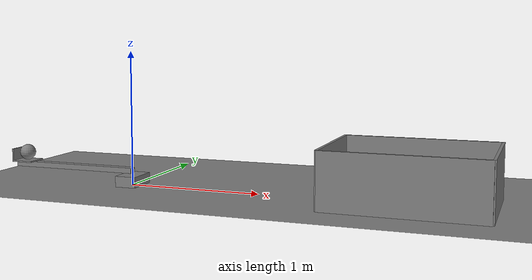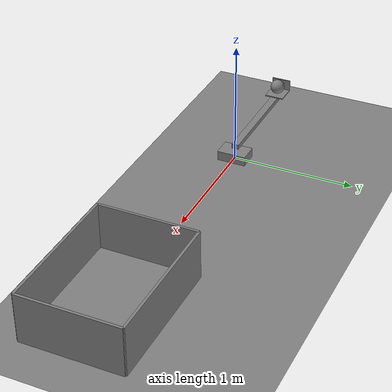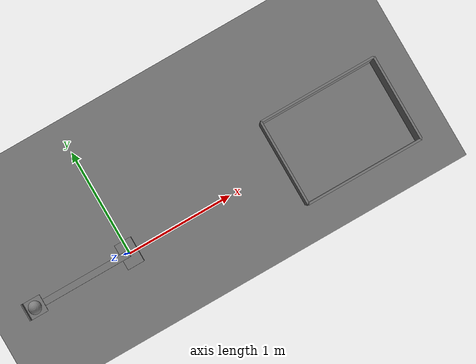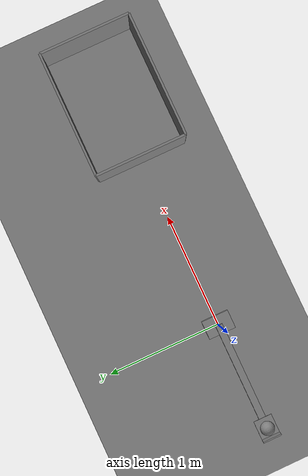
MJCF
<mujoco model="catapult_fixture_corrected">
  <compiler angle="degree"/>
  <option timestep="0.002"/>
  <worldbody>
    <geom name="floor" type="plane" size="8 8 0.1"/>
    <geom name="catapult_base" type="box" pos="0 0 0.04" size="0.08 0.12 0.04"/>
    <body name="catapult_arm" pos="0 0 0.11">
      <joint name="catapult_hinge" type="hinge" axis="0 1 0" limited="true" range="0 55" stiffness="2.65" springref="150" damping="0.05" armature="0.01" solreflimit="0.005 1"/>
      <geom name="catapult_beam" type="box" pos="-0.500 0 0" size="0.500 0.03 0.02" mass="0.3"/>
      <geom name="catapult_cup_floor" type="box" pos="-0.920 0 0.025" size="0.08 0.08 0.005" mass="0.02"/>
      <geom name="catapult_cup_back" type="box" pos="-1.005 0 0.07" size="0.005 0.08 0.05" mass="0.01"/>
    </body>
    <body name="ball" pos="-0.920 0 0.200">
      <freejoint/>
      <geom name="ball" type="sphere" size="0.06" mass="0.15" condim="6" friction="0.8 0.01 0.004" solref="0.01 1"/>
    </body>
    <body name="bucket" pos="2.080 0 0.200">
      <geom name="bucket_base" type="box" pos="0 0 -0.190" size="0.55 0.4 0.01"/>
      <geom name="bucket_near" type="box" pos="-0.55 0 0" size="0.01 0.4 0.2"/>
      <geom name="bucket_far" type="box" pos="0.55 0 0" size="0.01 0.4 0.2"/>
      <geom name="bucket_left" type="box" pos="0 0.4 0" size="0.55 0.01 0.2"/>
      <geom name="bucket_right" type="box" pos="0 -0.4 0" size="0.55 0.01 0.2"/>
    </body>
  </worldbody>
</mujoco>
